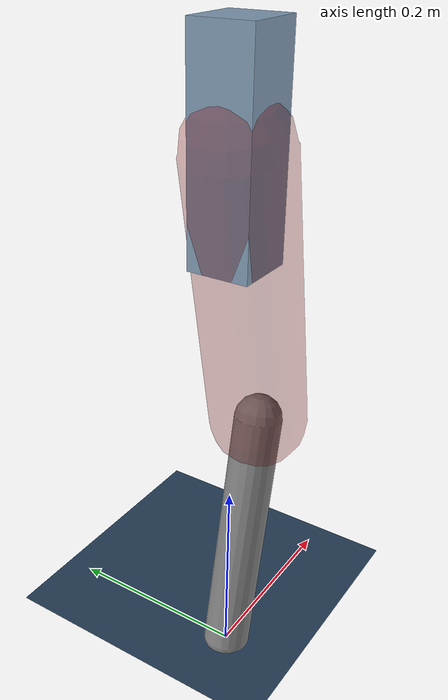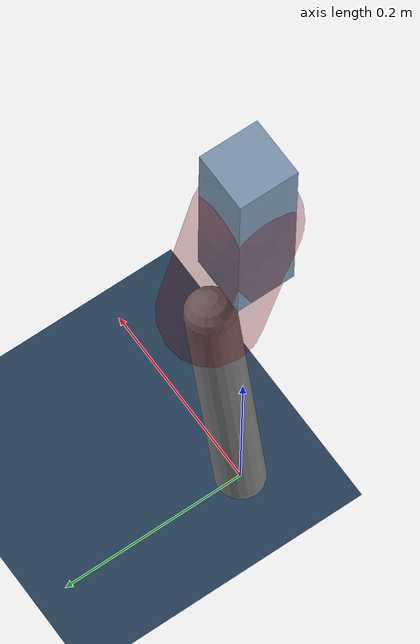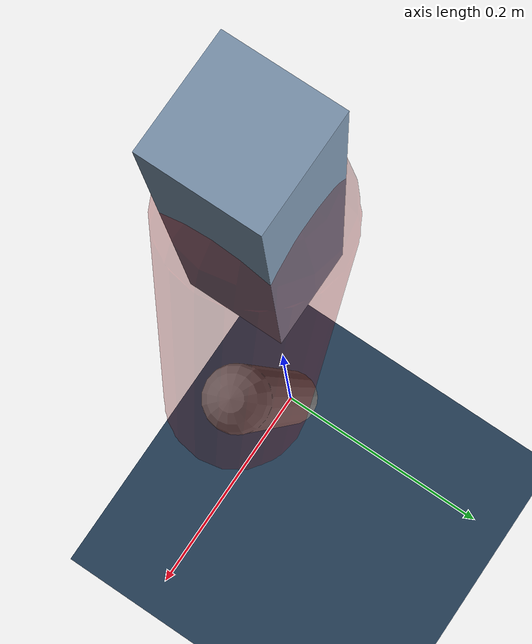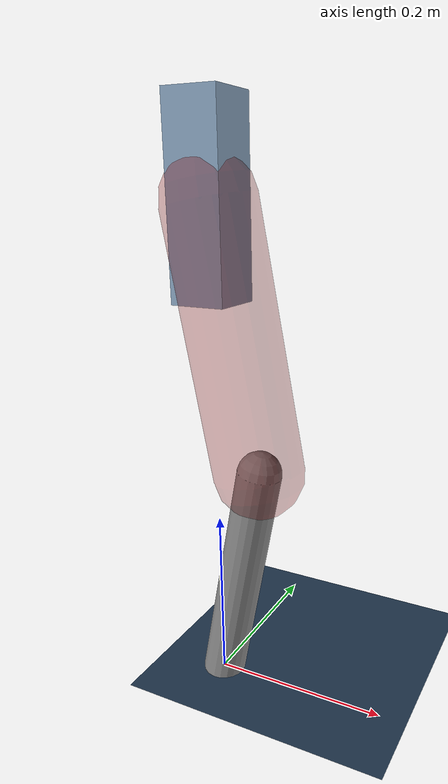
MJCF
<mujoco model="Hopper2D">
	<compiler inertiafromgeom="true" angle="radian" />
	<option timestep="0.001" integrator="implicit" cone="elliptic" solver="Newton" tolerance="1e-10" />

	<default>
		<geom contype="1" conaffinity="1" condim="3" friction="2 0.005 0.0001" solref="0.005 1" />
		<joint limited="true" damping="0.1" />
	</default>

	<asset>
		<texture name="skybox" type="skybox" builtin="gradient" rgb1=".4 .6 .8" rgb2="0 0 0" width="800" height="800" />
		<texture name="grid" type="2d" builtin="checker" rgb1=".1 .2 .3" rgb2=".2 .3 .4" width="300" height="300" mark="edge" markrgb=".2 .3 .4" />
		<material name="ground" texture="grid" texrepeat="1 1" texuniform="true" reflectance="0.1" />
		<material name="leg" rgba="0.5 0.6 0.7 1" />
	</asset>

	<worldbody>

		<geom name="floor" type="plane" size="5 5 0.25" material="ground" />

		<light directional="false" diffuse="0.8 0.8 0.8" specular="0.3 0.3 0.3" pos="0 0 2" dir="0 0 -1" />
		<light mode="targetbodycom" target="base" directional="false" diffuse="0.8 0.8 0.8" specular="0.3 0.3 0.3" pos="0 0 2" dir="0 0 -1" />

		<camera name="fixed" pos="0 -2 1" xyaxes="1 0 0 0 0 1" />
		<camera name="tracking" mode="trackcom" pos="0 -3 1" />

		<body name="root" pos="0 0 0.545667686873996">
			<joint name="slide_x" type="slide" axis="1 0 0" range="-100 100" />
			<joint name="slide_z" type="slide" axis="0 0 1" range="0 10" />

			<body name="base" pos="0 0 0">
				<geom name="torso" type="box" size="0.03 0.03 0.1" mass="2.535" material="leg" />

				<body name="link1" pos="0 0 0" euler="0 1.3855085477592926 0">
					<joint type="hinge" axis="0 -1 0" pos="0 0 0" name="hinge1" limited="true" range="-3.14 3.14" stiffness="0" damping="0.1" />
					<geom name="thigh" type="capsule" fromto="0 0 0 0.2847292789979841 0 0" size="0.05" rgba="0.5 0 0 0.3" mass="0.9476961253947588" />

					<body name="link2" pos="0.2847292789979841 0 0" euler="0 0.3801249024642521 0">
						<joint type="hinge" axis="0 -1 0" pos="0 0 0" name="hinge2" limited="true" range="-3.14 3.14" stiffness="0" damping="0.1" />
						<geom name="shank" type="capsule" fromto="0 0 0 0.27093840787601187 0 0" size="0.025" mass="0.45974456708841066" />

					</body>
				</body>
			</body>
		</body>
	</worldbody>

	<actuator>
		<motor name="torque1" joint="hinge1" ctrlrange="-131.18593946533235 131.18593946533235" ctrllimited="true" gear="1" />
		<motor name="torque2" joint="hinge2" ctrlrange="-106.29933299711996 106.29933299711996" ctrllimited="true" gear="1" />
	</actuator>
</mujoco>
